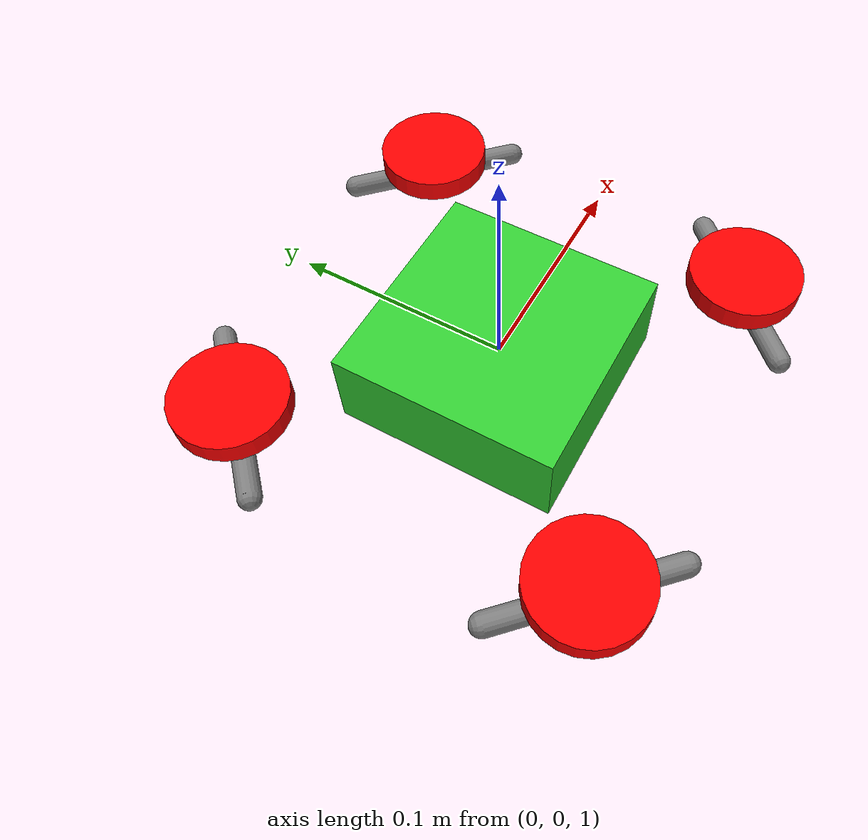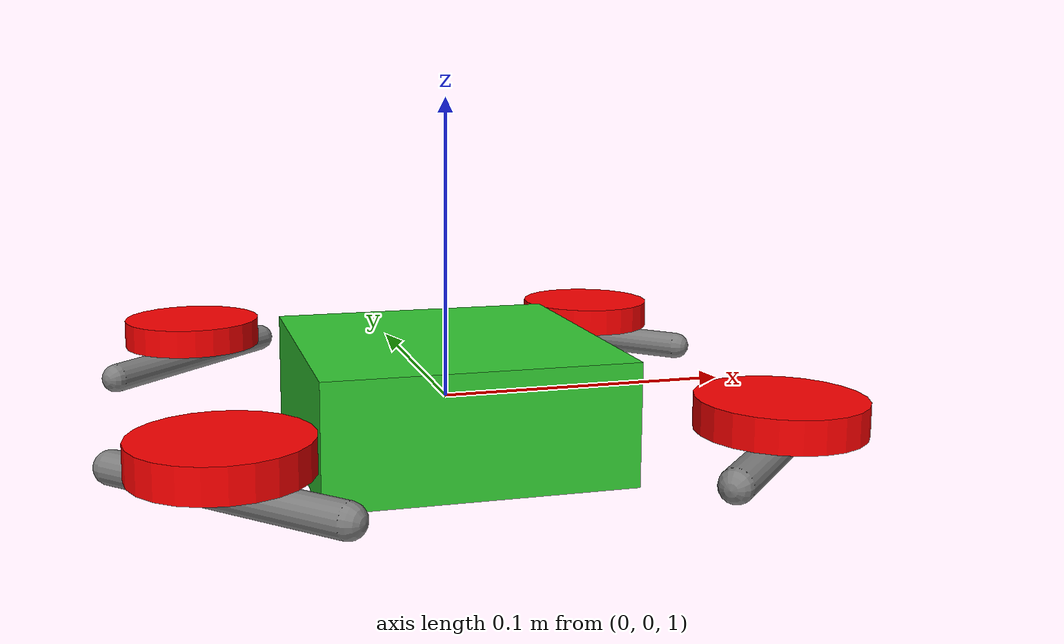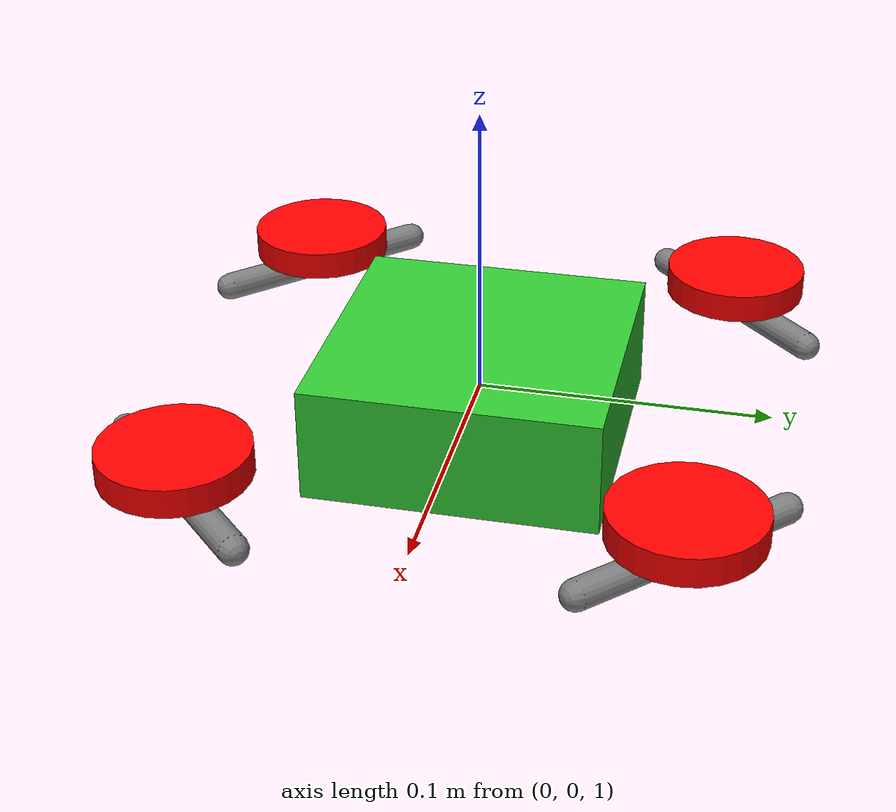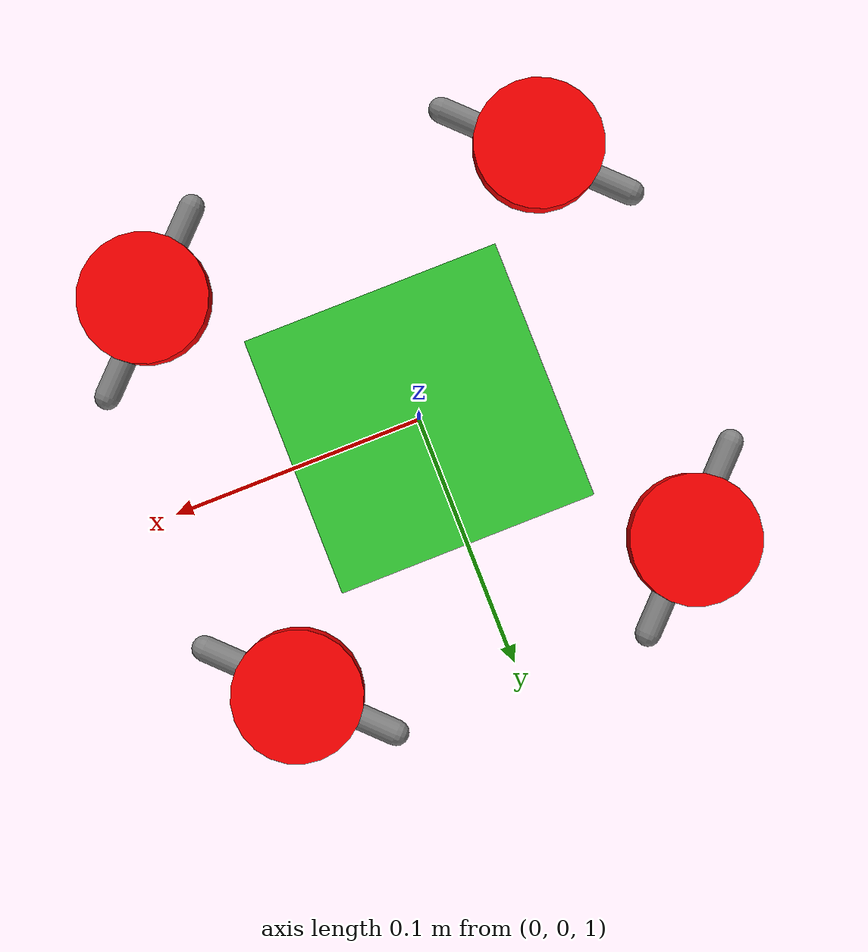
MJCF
<mujoco model="standard_5inch_quad">
    <compiler angle="degree" coordinate="local" eulerseq="xyz"/>
    <option timestep="0.002" gravity="0 0 -9.81"/>

    <!-- Hardware Profile Metadata: Ultra-low latency typical of 5-inch FPV frames -->
    <custom>
        <numeric name="transport_delay_ms" data="5.0"/>
        <numeric name="motor_tau" data="0.015"/>
        <numeric name="dof_mask" data="0 0 1 1 1 1"/>
    </custom>

    <worldbody>
        <light name="sun" pos="0 0 10" dir="0 0 -1"/>
        <geom name="floor" type="plane" size="10 10 0.1" rgba="0.8 0.9 0.8 1"/>

        <body name="drone" pos="0 0 1">
            <freejoint name="root"/>
            <!-- 0.6 kg mass, perfectly centered with symmetric diagonal inertia -->
            <inertial pos="0 0 0" mass="0.6" diaginertia="0.002 0.002 0.004"/>
            <geom name="core" type="box" size="0.05 0.05 0.02" rgba="0.2 0.8 0.2 1"/>

            <!-- Motor 0: Front Right (+45 deg) -->
            <body name="arm_0" pos="0.08 0.08 0.0">
                <geom type="capsule" size="0.005 0.04" rgba="0.5 0.5 0.5 1" euler="90 45 0"/>
                <site name="thruster_0" pos="0 0 0.01" type="cylinder" size="0.025 0.005" rgba="1 0 0 1"/>
            </body>

            <!-- Motor 1: Front Left (+135 deg) -->
            <body name="arm_1" pos="-0.08 0.08 0.0">
                <geom type="capsule" size="0.005 0.04" rgba="0.5 0.5 0.5 1" euler="90 -45 0"/>
                <site name="thruster_1" pos="0 0 0.01" type="cylinder" size="0.025 0.005" rgba="1 0 0 1"/>
            </body>

            <!-- Motor 2: Rear Left (-135 deg) -->
            <body name="arm_2" pos="-0.08 -0.08 0.0">
                <geom type="capsule" size="0.005 0.04" rgba="0.5 0.5 0.5 1" euler="90 45 0"/>
                <site name="thruster_2" pos="0 0 0.01" type="cylinder" size="0.025 0.005" rgba="1 0 0 1"/>
            </body>

            <!-- Motor 3: Rear Right (-45 deg) -->
            <body name="arm_3" pos="0.08 -0.08 0.0">
                <geom type="capsule" size="0.005 0.04" rgba="0.5 0.5 0.5 1" euler="90 -45 0"/>
                <site name="thruster_3" pos="0 0 0.01" type="cylinder" size="0.025 0.005" rgba="1 0 0 1"/>
            </body>
        </body>
    </worldbody>

    <actuator>
        <!-- Gear Array: [ForceX, ForceY, ForceZ, TorqueX, TorqueY, TorqueZ] -->
        <!-- Pure planar configuration with alternating yaw drag torques -->
        <general name="m_0" site="thruster_0" gear="0 0 1 0 0 -0.015" ctrllimited="true" ctrlrange="0 12"/>
        <general name="m_1" site="thruster_1" gear="0 0 1 0 0  0.015" ctrllimited="true" ctrlrange="0 12"/>
        <general name="m_2" site="thruster_2" gear="0 0 1 0 0 -0.015" ctrllimited="true" ctrlrange="0 12"/>
        <general name="m_3" site="thruster_3" gear="0 0 1 0 0  0.015" ctrllimited="true" ctrlrange="0 12"/>
    </actuator>
</mujoco>
